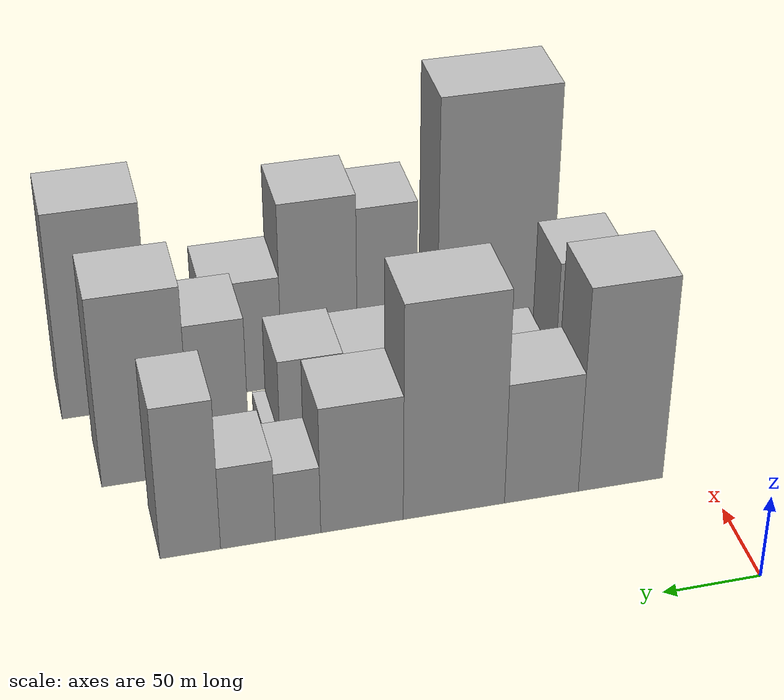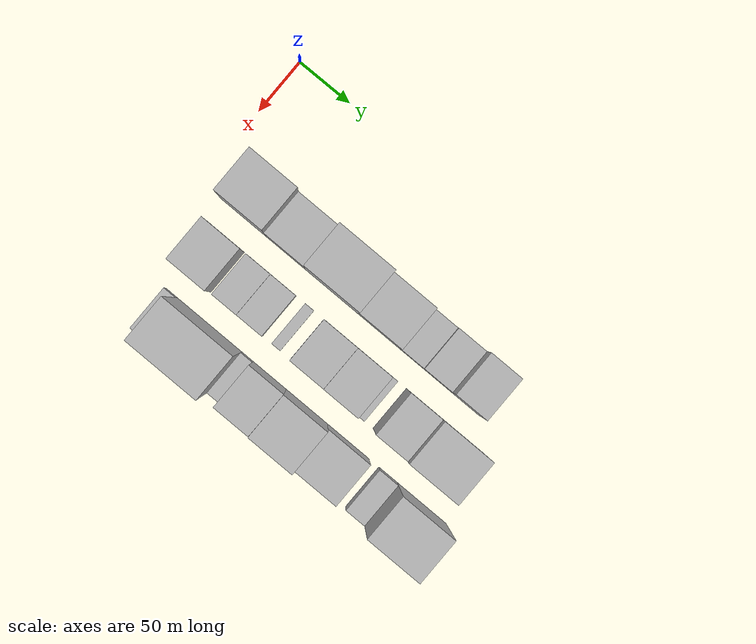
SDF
<sdf version="1.6">
 <world name="default">
  <model name="building_15">
   <static>1</static>
   <pose>100.0000 43.9420 0 0.000000 0.000000 0.000000</pose>
   <link name="link">
    <pose>0 0 63.00 0 0 0</pose>
    <collision name="collision"><geometry><box><size>40.0000 45.1230 126.0000</size></box></geometry></collision>
    <visual name="visual">
     <cast_shadows>0</cast_shadows>
     <geometry><box><size>40.0000 45.1230 126.0000</size></box></geometry>
     <material>
      <script>
       <uri>model://HANNAS_wall/materials/scripts</uri>
       <uri>model://HANNAS_wall/materials/textures</uri>
       <name>vrc/HANNAS_wall</name>
      </script>
     </material>
    </visual>
   </link>
  </model>
  <model name="building_16">
   <static>1</static>
   <pose>100.0000 85.9901 0 0.000000 0.000000 0.000000</pose>
   <link name="link">
    <pose>0 0 37.50 0 0 0</pose>
    <collision name="collision"><geometry><box><size>40.0000 38.9731 75.0000</size></box></geometry></collision>
    <visual name="visual">
     <cast_shadows>0</cast_shadows>
     <geometry><box><size>40.0000 38.9731 75.0000</size></box></geometry>
     <material>
      <script>
       <uri>model://HANNAS_wall/materials/scripts</uri>
       <uri>model://HANNAS_wall/materials/textures</uri>
       <name>vrc/HANNAS_wall</name>
      </script>
     </material>
    </visual>
   </link>
  </model>
  <model name="building_17">
   <static>1</static>
   <pose>100.0000 131.7560 0 0.000000 0.000000 0.000000</pose>
   <link name="link">
    <pose>0 0 66.00 0 0 0</pose>
    <collision name="collision"><geometry><box><size>40.0000 52.5588 132.0000</size></box></geometry></collision>
    <visual name="visual">
     <cast_shadows>0</cast_shadows>
     <geometry><box><size>40.0000 52.5588 132.0000</size></box></geometry>
     <material>
      <script>
       <uri>model://HANNAS_wall/materials/scripts</uri>
       <uri>model://HANNAS_wall/materials/textures</uri>
       <name>vrc/HANNAS_wall</name>
      </script>
     </material>
    </visual>
   </link>
  </model>
  <model name="building_18">
   <static>1</static>
   <pose>100.0000 179.0775 0 0.000000 0.000000 0.000000</pose>
   <link name="link">
    <pose>0 0 39.00 0 0 0</pose>
    <collision name="collision"><geometry><box><size>40.0000 42.0843 78.0000</size></box></geometry></collision>
    <visual name="visual">
     <cast_shadows>0</cast_shadows>
     <geometry><box><size>40.0000 42.0843 78.0000</size></box></geometry>
     <material>
      <script>
       <uri>model://HANNAS_wall/materials/scripts</uri>
       <uri>model://HANNAS_wall/materials/textures</uri>
       <name>vrc/HANNAS_wall</name>
      </script>
     </material>
    </visual>
   </link>
  </model>
  <model name="building_19">
   <static>1</static>
   <pose>100.0000 211.5534 0 0.000000 0.000000 0.000000</pose>
   <link name="link">
    <pose>0 0 21.00 0 0 0</pose>
    <collision name="collision"><geometry><box><size>40.0000 22.8676 42.0000</size></box></geometry></collision>
    <visual name="visual">
     <cast_shadows>0</cast_shadows>
     <geometry><box><size>40.0000 22.8676 42.0000</size></box></geometry>
     <material>
      <script>
       <uri>model://HANNAS_wall/materials/scripts</uri>
       <uri>model://HANNAS_wall/materials/textures</uri>
       <name>vrc/HANNAS_wall</name>
      </script>
     </material>
    </visual>
   </link>
  </model>
  <model name="building_20">
   <static>1</static>
   <pose>100.0000 236.6745 0 0.000000 0.000000 0.000000</pose>
   <link name="link">
    <pose>0 0 25.50 0 0 0</pose>
    <collision name="collision"><geometry><box><size>40.0000 27.3745 51.0000</size></box></geometry></collision>
    <visual name="visual">
     <cast_shadows>0</cast_shadows>
     <geometry><box><size>40.0000 27.3745 51.0000</size></box></geometry>
     <material>
      <script>
       <uri>model://HANNAS_wall/materials/scripts</uri>
       <uri>model://HANNAS_wall/materials/textures</uri>
       <name>vrc/HANNAS_wall</name>
      </script>
     </material>
    </visual>
   </link>
  </model>
  <model name="building_21">
   <static>1</static>
   <pose>100.0000 265.3255 0 0.000000 0.000000 0.000000</pose>
   <link name="link">
    <pose>0 0 46.50 0 0 0</pose>
    <collision name="collision"><geometry><box><size>40.0000 29.9275 93.0000</size></box></geometry></collision>
    <visual name="visual">
     <cast_shadows>0</cast_shadows>
     <geometry><box><size>40.0000 29.9275 93.0000</size></box></geometry>
     <material>
      <script>
       <uri>model://HANNAS_wall/materials/scripts</uri>
       <uri>model://HANNAS_wall/materials/textures</uri>
       <name>vrc/HANNAS_wall</name>
      </script>
     </material>
    </visual>
   </link>
  </model>
  <model name="building_48">
   <static>1</static>
   <pose>160.0000 43.3925 0 0.000000 0.000000 0.000000</pose>
   <link name="link">
    <pose>0 0 49.50 0 0 0</pose>
    <collision name="collision"><geometry><box><size>40.0000 36.4776 99.0000</size></box></geometry></collision>
    <visual name="visual">
     <cast_shadows>0</cast_shadows>
     <geometry><box><size>40.0000 36.4776 99.0000</size></box></geometry>
     <material>
      <script>
       <uri>model://HANNAS_wall/materials/scripts</uri>
       <uri>model://HANNAS_wall/materials/textures</uri>
       <name>vrc/HANNAS_wall</name>
      </script>
     </material>
    </visual>
   </link>
  </model>
  <model name="building_49">
   <static>1</static>
   <pose>160.0000 76.7657 0 0.000000 0.000000 0.000000</pose>
   <link name="link">
    <pose>0 0 22.50 0 0 0</pose>
    <collision name="collision"><geometry><box><size>40.0000 24.2688 45.0000</size></box></geometry></collision>
    <visual name="visual">
     <cast_shadows>0</cast_shadows>
     <geometry><box><size>40.0000 24.2688 45.0000</size></box></geometry>
     <material>
      <script>
       <uri>model://HANNAS_wall/materials/scripts</uri>
       <uri>model://HANNAS_wall/materials/textures</uri>
       <name>vrc/HANNAS_wall</name>
      </script>
     </material>
    </visual>
   </link>
  </model>
  <model name="building_50">
   <static>1</static>
   <pose>160.0000 101.3838 0 0.000000 0.000000 0.000000</pose>
   <link name="link">
    <pose>0 0 21.00 0 0 0</pose>
    <collision name="collision"><geometry><box><size>40.0000 24.9673 42.0000</size></box></geometry></collision>
    <visual name="visual">
     <cast_shadows>0</cast_shadows>
     <geometry><box><size>40.0000 24.9673 42.0000</size></box></geometry>
     <material>
      <script>
       <uri>model://HANNAS_wall/materials/scripts</uri>
       <uri>model://HANNAS_wall/materials/textures</uri>
       <name>vrc/HANNAS_wall</name>
      </script>
     </material>
    </visual>
   </link>
  </model>
  <model name="building_51">
   <static>1</static>
   <pose>160.0000 127.2088 0 0.000000 0.000000 0.000000</pose>
   <link name="link">
    <pose>0 0 9.00 0 0 0</pose>
    <collision name="collision"><geometry><box><size>40.0000 8.6827 18.0000</size></box></geometry></collision>
    <visual name="visual">
     <cast_shadows>0</cast_shadows>
     <geometry><box><size>40.0000 8.6827 18.0000</size></box></geometry>
     <material>
      <script>
       <uri>model://HANNAS_wall/materials/scripts</uri>
       <uri>model://HANNAS_wall/materials/textures</uri>
       <name>vrc/HANNAS_wall</name>
      </script>
     </material>
    </visual>
   </link>
  </model>
  <model name="building_52">
   <static>1</static>
   <pose>160.0000 158.1198 0 0.000000 0.000000 0.000000</pose>
   <link name="link">
    <pose>0 0 30.00 0 0 0</pose>
    <collision name="collision"><geometry><box><size>40.0000 33.1394 60.0000</size></box></geometry></collision>
    <visual name="visual">
     <cast_shadows>0</cast_shadows>
     <geometry><box><size>40.0000 33.1394 60.0000</size></box></geometry>
     <material>
      <script>
       <uri>model://HANNAS_wall/materials/scripts</uri>
       <uri>model://HANNAS_wall/materials/textures</uri>
       <name>vrc/HANNAS_wall</name>
      </script>
     </material>
    </visual>
   </link>
  </model>
  <model name="building_53">
   <static>1</static>
   <pose>160.0000 191.5891 0 0.000000 0.000000 0.000000</pose>
   <link name="link">
    <pose>0 0 31.50 0 0 0</pose>
    <collision name="collision"><geometry><box><size>40.0000 33.7992 63.0000</size></box></geometry></collision>
    <visual name="visual">
     <cast_shadows>0</cast_shadows>
     <geometry><box><size>40.0000 33.7992 63.0000</size></box></geometry>
     <material>
      <script>
       <uri>model://HANNAS_wall/materials/scripts</uri>
       <uri>model://HANNAS_wall/materials/textures</uri>
       <name>vrc/HANNAS_wall</name>
      </script>
     </material>
    </visual>
   </link>
  </model>
  <model name="building_54">
   <static>1</static>
   <pose>160.0000 211.9809 0 0.000000 0.000000 0.000000</pose>
   <link name="link">
    <pose>0 0 7.50 0 0 0</pose>
    <collision name="collision"><geometry><box><size>40.0000 6.9846 15.0000</size></box></geometry></collision>
    <visual name="visual">
     <cast_shadows>0</cast_shadows>
     <geometry><box><size>40.0000 6.9846 15.0000</size></box></geometry>
     <material>
      <script>
       <uri>model://HANNAS_wall/materials/scripts</uri>
       <uri>model://HANNAS_wall/materials/textures</uri>
       <name>vrc/HANNAS_wall</name>
      </script>
     </material>
    </visual>
   </link>
  </model>
  <model name="building_55">
   <static>1</static>
   <pose>160.0000 239.7272 0 0.000000 0.000000 0.000000</pose>
   <link name="link">
    <pose>0 0 46.50 0 0 0</pose>
    <collision name="collision"><geometry><box><size>40.0000 30.5080 93.0000</size></box></geometry></collision>
    <visual name="visual">
     <cast_shadows>0</cast_shadows>
     <geometry><box><size>40.0000 30.5080 93.0000</size></box></geometry>
     <material>
      <script>
       <uri>model://HANNAS_wall/materials/scripts</uri>
       <uri>model://HANNAS_wall/materials/textures</uri>
       <name>vrc/HANNAS_wall</name>
      </script>
     </material>
    </visual>
   </link>
  </model>
  <model name="building_56">
   <static>1</static>
   <pose>160.0000 278.0785 0 0.000000 0.000000 0.000000</pose>
   <link name="link">
    <pose>0 0 58.50 0 0 0</pose>
    <collision name="collision"><geometry><box><size>40.0000 46.1947 117.0000</size></box></geometry></collision>
    <visual name="visual">
     <cast_shadows>0</cast_shadows>
     <geometry><box><size>40.0000 46.1947 117.0000</size></box></geometry>
     <material>
      <script>
       <uri>model://HANNAS_wall/materials/scripts</uri>
       <uri>model://HANNAS_wall/materials/textures</uri>
       <name>vrc/HANNAS_wall</name>
      </script>
     </material>
    </visual>
   </link>
  </model>
  <model name="building_81">
   <static>1</static>
   <pose>220.0000 38.6133 0 0.000000 0.000000 0.000000</pose>
   <link name="link">
    <pose>0 0 12.00 0 0 0</pose>
    <collision name="collision"><geometry><box><size>40.0000 11.6618 24.0000</size></box></geometry></collision>
    <visual name="visual">
     <cast_shadows>0</cast_shadows>
     <geometry><box><size>40.0000 11.6618 24.0000</size></box></geometry>
     <material>
      <script>
       <uri>model://HANNAS_wall/materials/scripts</uri>
       <uri>model://HANNAS_wall/materials/textures</uri>
       <name>vrc/HANNAS_wall</name>
      </script>
     </material>
    </visual>
   </link>
  </model>
  <model name="building_82">
   <static>1</static>
   <pose>220.0000 76.9229 0 0.000000 0.000000 0.000000</pose>
   <link name="link">
    <pose>0 0 84.00 0 0 0</pose>
    <collision name="collision"><geometry><box><size>40.0000 64.9574 168.0000</size></box></geometry></collision>
    <visual name="visual">
     <cast_shadows>0</cast_shadows>
     <geometry><box><size>40.0000 64.9574 168.0000</size></box></geometry>
     <material>
      <script>
       <uri>model://HANNAS_wall/materials/scripts</uri>
       <uri>model://HANNAS_wall/materials/textures</uri>
       <name>vrc/HANNAS_wall</name>
      </script>
     </material>
    </visual>
   </link>
  </model>
  <model name="building_83">
   <static>1</static>
   <pose>220.0000 115.1582 0 0.000000 0.000000 0.000000</pose>
   <link name="link">
    <pose>0 0 13.50 0 0 0</pose>
    <collision name="collision"><geometry><box><size>40.0000 11.5132 27.0000</size></box></geometry></collision>
    <visual name="visual">
     <cast_shadows>0</cast_shadows>
     <geometry><box><size>40.0000 11.5132 27.0000</size></box></geometry>
     <material>
      <script>
       <uri>model://HANNAS_wall/materials/scripts</uri>
       <uri>model://HANNAS_wall/materials/textures</uri>
       <name>vrc/HANNAS_wall</name>
      </script>
     </material>
    </visual>
   </link>
  </model>
  <model name="building_84">
   <static>1</static>
   <pose>220.0000 137.4270 0 0.000000 0.000000 0.000000</pose>
   <link name="link">
    <pose>0 0 54.00 0 0 0</pose>
    <collision name="collision"><geometry><box><size>40.0000 33.0242 108.0000</size></box></geometry></collision>
    <visual name="visual">
     <cast_shadows>0</cast_shadows>
     <geometry><box><size>40.0000 33.0242 108.0000</size></box></geometry>
     <material>
      <script>
       <uri>model://HANNAS_wall/materials/scripts</uri>
       <uri>model://HANNAS_wall/materials/textures</uri>
       <name>vrc/HANNAS_wall</name>
      </script>
     </material>
    </visual>
   </link>
  </model>
  <model name="building_85">
   <static>1</static>
   <pose>220.0000 174.7877 0 0.000000 0.000000 0.000000</pose>
   <link name="link">
    <pose>0 0 58.50 0 0 0</pose>
    <collision name="collision"><geometry><box><size>40.0000 41.6973 117.0000</size></box></geometry></collision>
    <visual name="visual">
     <cast_shadows>0</cast_shadows>
     <geometry><box><size>40.0000 41.6973 117.0000</size></box></geometry>
     <material>
      <script>
       <uri>model://HANNAS_wall/materials/scripts</uri>
       <uri>model://HANNAS_wall/materials/textures</uri>
       <name>vrc/HANNAS_wall</name>
      </script>
     </material>
    </visual>
   </link>
  </model>
  <model name="building_86">
   <static>1</static>
   <pose>220.0000 216.3850 0 0.000000 0.000000 0.000000</pose>
   <link name="link">
    <pose>0 0 36.00 0 0 0</pose>
    <collision name="collision"><geometry><box><size>40.0000 41.4972 72.0000</size></box></geometry></collision>
    <visual name="visual">
     <cast_shadows>0</cast_shadows>
     <geometry><box><size>40.0000 41.4972 72.0000</size></box></geometry>
     <material>
      <script>
       <uri>model://HANNAS_wall/materials/scripts</uri>
       <uri>model://HANNAS_wall/materials/textures</uri>
       <name>vrc/HANNAS_wall</name>
      </script>
     </material>
    </visual>
   </link>
  </model>
  <model name="building_87">
   <static>1</static>
   <pose>220.0000 256.3079 0 0.000000 0.000000 0.000000</pose>
   <link name="link">
    <pose>0 0 16.50 0 0 0</pose>
    <collision name="collision"><geometry><box><size>40.0000 18.3486 33.0000</size></box></geometry></collision>
    <visual name="visual">
     <cast_shadows>0</cast_shadows>
     <geometry><box><size>40.0000 18.3486 33.0000</size></box></geometry>
     <material>
      <script>
       <uri>model://HANNAS_wall/materials/scripts</uri>
       <uri>model://HANNAS_wall/materials/textures</uri>
       <name>vrc/HANNAS_wall</name>
      </script>
     </material>
    </visual>
   </link>
  </model>
  <model name="building_88">
   <static>1</static>
   <pose>220.0000 290.0962 0 0.000000 0.000000 0.000000</pose>
   <link name="link">
    <pose>0 0 64.50 0 0 0</pose>
    <collision name="collision"><geometry><box><size>40.0000 49.2280 129.0000</size></box></geometry></collision>
    <visual name="visual">
     <cast_shadows>0</cast_shadows>
     <geometry><box><size>40.0000 49.2280 129.0000</size></box></geometry>
     <material>
      <script>
       <uri>model://HANNAS_wall/materials/scripts</uri>
       <uri>model://HANNAS_wall/materials/textures</uri>
       <name>vrc/HANNAS_wall</name>
      </script>
     </material>
    </visual>
   </link>
  </model>
 </world>
</sdf>
